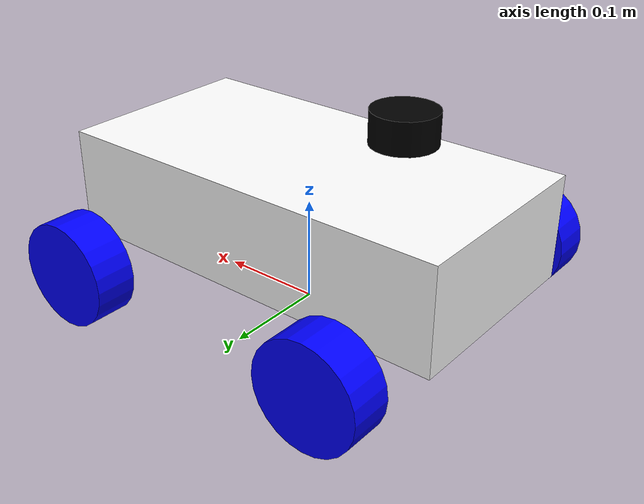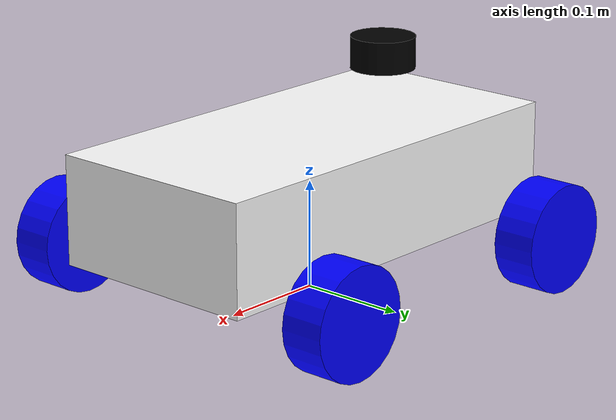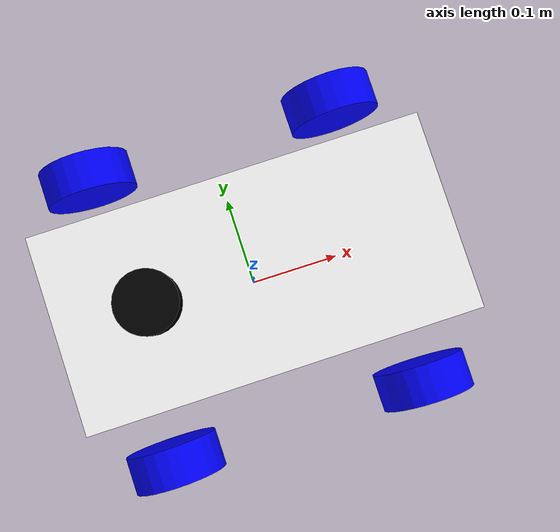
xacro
<?xml version="1.0"?>
<robot xmlns:xacro="http://www.ros.org/wiki/xacro" name="urdf_tutorial">

    <xacro:include filename="macros.xacro"/>

    <material name="white"><color rgba="1 1 1 1" /></material>
    <material name="blue"><color rgba="0 0 1 1"/></material>
    <material name="black"><color rgba="0 0 0 1"/></material>

    <link name="base_link"></link>

    <joint name="chassis_joint" type="fixed">
        <parent link="base_link"/>
        <child link="chassis"/>
        <origin xyz="-0.1 0 0.05"/>
    </joint>

    <link name="chassis">
        <visual>
            <origin xyz="0.1 0 0.05"/>
            <geometry><box size="0.4 0.2 0.1"/></geometry>
            <material name="white"/>
        </visual>
        <collision>
            <origin xyz="0.1 0 0.05"/>
            <geometry><box size="0.4 0.2 0.1"/></geometry>
        </collision>
        <xacro:inertial_box mass="10.0" x="0.4" y="0.2" z="0.1">
            <origin xyz="0.1 0 -0.15" rpy="0 0 0"/>
        </xacro:inertial_box>
    </link>

    <gazebo reference="chassis">
        <material>Gazebo/White</material>
    </gazebo>

    <xacro:macro name="rear_wheel" params="prefix y_offset dir">
        <joint name="${prefix}_wheel_joint" type="continuous">
            <parent link="base_link"/>
            <child link="${prefix}_wheel"/>
            <origin xyz="-0.14 ${y_offset} 0.05" rpy="${dir*pi/2} 0 0" />
            <axis xyz="0 0 ${-1*dir}"/>

            <limit effort="20.0" velocity="50.0"/>
            <dynamics damping="0.1" friction="0.1"/>
        </joint>

        <link name="${prefix}_wheel">
            <visual>
                <geometry><cylinder radius="0.05" length="0.04"/></geometry>
                <material name="blue"/>
            </visual>
            <collision>
                <geometry><cylinder radius="0.05" length="0.04"/></geometry>
            </collision>
            <xacro:inertial_cylinder mass="0.5" length="0.04" radius="0.05">
                <origin xyz="0 0 0" rpy="0 0 0"/>
            </xacro:inertial_cylinder>
        </link>

        <gazebo reference="${prefix}_wheel">
            <material>Gazebo/Blue</material>
            <kp>1000000.0</kp>
            <kd>1.0</kd>
            <mu1>20.0</mu1>
            <mu2>20.0</mu2>

        </gazebo>
    </xacro:macro>

    <xacro:rear_wheel prefix="rear_left" y_offset="0.16" dir="-1"/>
    <xacro:rear_wheel prefix="rear_right" y_offset="-0.16" dir="1"/>

    <xacro:macro name="front_steer_wheel" params="prefix y_offset dir">
        <joint name="${prefix}_steer_joint" type="revolute">
            <parent link="base_link"/>
            <child link="${prefix}_steer_link"/>
            <origin xyz="0.14 ${y_offset} 0.05" rpy="0 0 0"/>
            <axis xyz="0 0 1"/>

            <limit lower="-0.6" upper="0.6" effort="50.0" velocity="50.0"/>
            <dynamics damping="0.1" friction="0.1"/>
        </joint>

        <link name="${prefix}_steer_link">
            <visual>
                <geometry><cylinder radius="0.01" length="0.01"/></geometry>
                <material name="black"/>
            </visual>
            <xacro:inertial_cylinder mass="0.5" length="0.01" radius="0.1">
                <origin xyz="0 0 0" rpy="0 0 0"/>
            </xacro:inertial_cylinder>
        </link>

        <joint name="${prefix}_wheel_joint" type="continuous">
            <parent link="${prefix}_steer_link"/>
            <child link="${prefix}_wheel"/>
            <origin xyz="0 0 0" rpy="${dir*pi/2} 0 0"/>
            <axis xyz="0 0 ${-1*dir}"/>

            <limit effort="20.0" velocity="50.0"/>
            <dynamics damping="0.1" friction="0.1"/>
        </joint>

        <link name="${prefix}_wheel">
            <visual>
                <geometry><cylinder radius="0.05" length="0.04"/></geometry>
                <material name="blue"/>
            </visual>
            <collision>
                <geometry><cylinder radius="0.05" length="0.04"/></geometry>
            </collision>
            <xacro:inertial_cylinder mass="0.5" length="0.04" radius="0.05">
                <origin xyz="0 0 0" rpy="0 0 0"/>
            </xacro:inertial_cylinder>
        </link>

        <gazebo reference="${prefix}_wheel">
            <material>Gazebo/Blue</material>
            <kp>1000000.0</kp>
            <kd>1.0</kd>
            <mu1>20.0</mu1>
            <mu2>20.0</mu2>

        </gazebo>
    </xacro:macro>

    <xacro:front_steer_wheel prefix="front_left" y_offset="0.16" dir="-1"/>
    <xacro:front_steer_wheel prefix="front_right" y_offset="-0.16" dir="1"/>

    <xacro:include filename="gazebo.xacro"/>
	<joint name="laser_joint" type="fixed">
        <parent link="base_link"/>
        <child link="laser_frame"/>
        <origin xyz="-0.1 0 0.2" rpy="0 0 0"/>
    </joint>

    <link name="laser_frame">
        <visual>
            <geometry>
                <cylinder radius="0.03" length="0.03"/>
            </geometry>
            <material name="black"/>
        </visual>
        <collision>
            <geometry>
                <cylinder radius="0.03" length="0.03"/>
            </geometry>
        </collision>
        <xacro:inertial_cylinder mass="0.1" length="0.03" radius="0.03">
            <origin xyz="0 0 0" rpy="0 0 0"/>
        </xacro:inertial_cylinder>
    </link>

    <gazebo reference="laser_frame">
        <sensor name="lidar" type="ray">
            <pose> 0 0 0 0 0 0 </pose>
            <visualize>true</visualize>
            <update_rate>40</update_rate>
            <ray>
                <scan>
                    <horizontal>
                        <samples>720</samples>
                        <resolution>1</resolution>
                        <min_angle>-3.14159</min_angle>
                        <max_angle>3.14159</max_angle>
                    </horizontal>
                </scan>
                <range>
                    <min>0.1</min>
                    <max>15.0</max>
                    <resolution>0.01</resolution>
                </range>
                <noise>
                    <type>gaussian</type>
                    <mean>0.0</mean>
                    <stddev>0.001</stddev>
                </noise>
            </ray>
            <plugin name="laser_controller" filename="libgazebo_ros_ray_sensor.so">
                <ros>
                    <argument>~/out:=scan</argument>
                </ros>
                <output_type>sensor_msgs/LaserScan</output_type>
                <frame_name>laser_frame</frame_name>
            </plugin>
        </sensor>
    </gazebo>

</robot>
